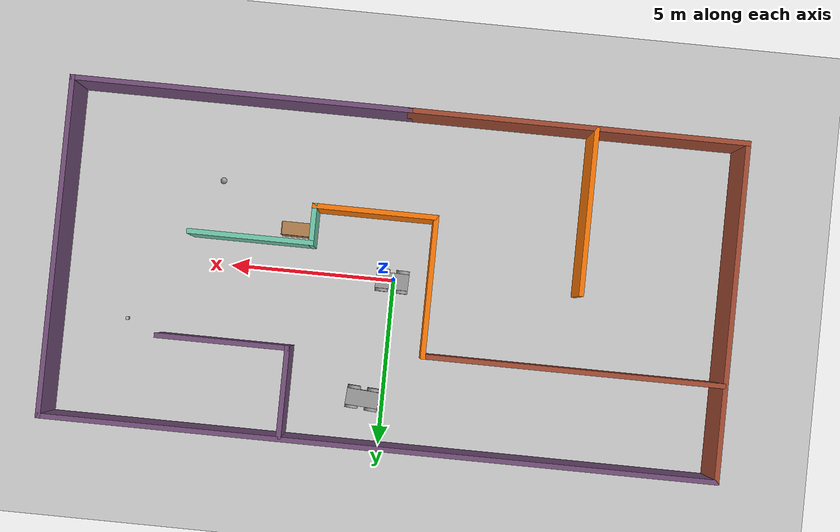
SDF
<sdf version="1.6">
 <world name="default">
  <plugin name="hello" filename="libhello.so"/>
  <light name="sun" type="directional">
   <pose>0 0 10 0 -0 0</pose>
   <diffuse>0.8 0.8 0.8 1</diffuse>
   <specular>0.2 0.2 0.2 1</specular>
   <attenuation>
    <range>1000</range>
    <constant>0.9</constant>
    <linear>0.01</linear>
    <quadratic>0.001</quadratic>
   </attenuation>
   <direction>-0.5 0.1 -0.9</direction>
  </light>
  <model name="ground_plane">
   <static>1</static>
   <link name="link">
    <collision name="collision">
     <geometry><plane><normal>0 0 1</normal><size>100 100</size></plane></geometry>
     <surface>
      <contact><collide_bitmask>65535</collide_bitmask></contact>
      <friction><ode><mu>100</mu><mu2>50</mu2></ode></friction>
     </surface>
    </collision>
    <visual name="visual">
     <cast_shadows>0</cast_shadows>
     <geometry><plane><normal>0 0 1</normal><size>100 100</size></plane></geometry>
     <material>
      <script><uri>file://media/materials/scripts/gazebo.material</uri><name>Gazebo/Grey</name></script>
     </material>
    </visual>
   </link>
  </model>
  <gravity>0 0 -9.8</gravity>
  <magnetic_field>6e-06 2.3e-05 -4.2e-05</magnetic_field>
  <atmosphere type="adiabatic"/>
  <physics name="default_physics" default="0" type="ode">
   <max_step_size>0.001</max_step_size>
   <real_time_factor>1</real_time_factor>
   <real_time_update_rate>1000</real_time_update_rate>
  </physics>
  <scene><ambient>0.4 0.4 0.4 1</ambient><background>0.7 0.7 0.7 1</background><shadows>1</shadows></scene>
  <audio><device>default</device></audio>
  <spherical_coordinates>
   <surface_model>EARTH_WGS84</surface_model>
   <latitude_deg>0</latitude_deg>
   <longitude_deg>0</longitude_deg>
   <elevation>0</elevation>
   <heading_deg>0</heading_deg>
  </spherical_coordinates>
  <model name="RoboModel">
   <link name="link_0">
    <inertial>
     <mass>1</mass>
     <inertia>
      <ixx>0.166667</ixx>
      <ixy>0</ixy>
      <ixz>0</ixz>
      <iyy>0.166667</iyy>
      <iyz>0</iyz>
      <izz>0.166667</izz>
     </inertia>
    </inertial>
    <pose>0 0.001523 -0.04 0 -0 0</pose>
    <visual name="visual">
     <geometry><box><size>1 0.5 0.3</size></box></geometry>
     <material>
      <lighting>1</lighting>
      <script><uri>file://media/materials/scripts/gazebo.material</uri><name>Gazebo/Grey</name></script>
      <shader type="vertex"><normal_map>__default__</normal_map></shader>
      <ambient>0.3 0.3 0.3 1</ambient>
      <diffuse>0.7 0.7 0.7 1</diffuse>
      <specular>0.01 0.01 0.01 1</specular>
      <emissive>0 0 0 1</emissive>
     </material>
    </visual>
    <collision name="collision">
     <geometry><box><size>1 0.5 0.3</size></box></geometry>
     <surface>
      <friction>
       <ode><mu>1</mu><mu2>1</mu2><fdir1>0 0 0</fdir1><slip1>0</slip1><slip2>0</slip2></ode>
       <torsional>
        <coefficient>1</coefficient>
        <patch_radius>0</patch_radius>
        <surface_radius>0</surface_radius>
        <use_patch_radius>1</use_patch_radius>
        <ode><slip>0</slip></ode>
       </torsional>
      </friction>
      <bounce><restitution_coefficient>0</restitution_coefficient><threshold>1e+06</threshold></bounce>
      <contact>
       <collide_without_contact>0</collide_without_contact>
       <collide_without_contact_bitmask>1</collide_without_contact_bitmask>
       <collide_bitmask>1</collide_bitmask>
       <ode>
        <soft_cfm>0</soft_cfm>
        <soft_erp>0.2</soft_erp>
        <kp>1e+13</kp>
        <kd>1</kd>
        <max_vel>0.01</max_vel>
        <min_depth>0</min_depth>
       </ode>
       <bullet>
        <split_impulse>1</split_impulse>
        <split_impulse_penetration_threshold>-0.01</split_impulse_penetration_threshold>
        <soft_cfm>0</soft_cfm>
        <soft_erp>0.2</soft_erp>
        <kp>1e+13</kp>
        <kd>1</kd>
       </bullet>
      </contact>
     </surface>
    </collision>
   </link>
   <link name="link_1_clone_0">
    <inertial>
     <mass>1</mass>
     <inertia><ixx>0.145833</ixx><ixy>0</ixy><ixz>0</ixz><iyy>0.145833</iyy><iyz>0</iyz><izz>0.125</izz></inertia>
    </inertial>
    <pose>0.3 -0.298496 -0.14 1.5707 -0 0</pose>
    <visual name="visual">
     <geometry><cylinder><radius>0.2</radius><length>0.1</length></cylinder></geometry>
     <material>
      <lighting>1</lighting>
      <script><uri>file://media/materials/scripts/gazebo.material</uri><name>Gazebo/Grey</name></script>
      <shader type="vertex"><normal_map>__default__</normal_map></shader>
      <ambient>0.3 0.3 0.3 1</ambient>
      <diffuse>0.7 0.7 0.7 1</diffuse>
      <specular>0.01 0.01 0.01 1</specular>
      <emissive>0 0 0 1</emissive>
     </material>
    </visual>
    <collision name="collision">
     <geometry><cylinder><radius>0.2</radius><length>0.1</length></cylinder></geometry>
     <surface>
      <friction>
       <ode><mu>1</mu><mu2>1</mu2><fdir1>0 0 0</fdir1><slip1>0</slip1><slip2>0</slip2></ode>
       <torsional>
        <coefficient>1</coefficient>
        <patch_radius>0</patch_radius>
        <surface_radius>0</surface_radius>
        <use_patch_radius>1</use_patch_radius>
        <ode><slip>0</slip></ode>
       </torsional>
      </friction>
      <bounce><restitution_coefficient>0</restitution_coefficient><threshold>1e+06</threshold></bounce>
      <contact>
       <collide_without_contact>0</collide_without_contact>
       <collide_without_contact_bitmask>1</collide_without_contact_bitmask>
       <collide_bitmask>1</collide_bitmask>
       <ode>
        <soft_cfm>0</soft_cfm>
        <soft_erp>0.2</soft_erp>
        <kp>1e+13</kp>
        <kd>1</kd>
        <max_vel>0.01</max_vel>
        <min_depth>0</min_depth>
       </ode>
       <bullet>
        <split_impulse>1</split_impulse>
        <split_impulse_penetration_threshold>-0.01</split_impulse_penetration_threshold>
        <soft_cfm>0</soft_cfm>
        <soft_erp>0.2</soft_erp>
        <kp>1e+13</kp>
        <kd>1</kd>
       </bullet>
      </contact>
     </surface>
    </collision>
   </link>
   <link name="link_1_clone_1">
    <inertial>
     <mass>1</mass>
     <inertia><ixx>0.145833</ixx><ixy>0</ixy><ixz>0</ixz><iyy>0.145833</iyy><iyz>0</iyz><izz>0.125</izz></inertia>
    </inertial>
    <pose>-0.3 -0.298496 -0.14 1.5707 -0 0</pose>
    <visual name="visual">
     <geometry><cylinder><radius>0.2</radius><length>0.1</length></cylinder></geometry>
     <material>
      <lighting>1</lighting>
      <script><uri>file://media/materials/scripts/gazebo.material</uri><name>Gazebo/Grey</name></script>
      <shader type="vertex"><normal_map>__default__</normal_map></shader>
      <ambient>0.3 0.3 0.3 1</ambient>
      <diffuse>0.7 0.7 0.7 1</diffuse>
      <specular>0.01 0.01 0.01 1</specular>
      <emissive>0 0 0 1</emissive>
     </material>
    </visual>
    <collision name="collision">
     <geometry><cylinder><radius>0.2</radius><length>0.1</length></cylinder></geometry>
     <surface>
      <friction>
       <ode><mu>1</mu><mu2>1</mu2><fdir1>0 0 0</fdir1><slip1>0</slip1><slip2>0</slip2></ode>
       <torsional>
        <coefficient>1</coefficient>
        <patch_radius>0</patch_radius>
        <surface_radius>0</surface_radius>
        <use_patch_radius>1</use_patch_radius>
        <ode><slip>0</slip></ode>
       </torsional>
      </friction>
      <bounce><restitution_coefficient>0</restitution_coefficient><threshold>1e+06</threshold></bounce>
      <contact>
       <collide_without_contact>0</collide_without_contact>
       <collide_without_contact_bitmask>1</collide_without_contact_bitmask>
       <collide_bitmask>1</collide_bitmask>
       <ode>
        <soft_cfm>0</soft_cfm>
        <soft_erp>0.2</soft_erp>
        <kp>1e+13</kp>
        <kd>1</kd>
        <max_vel>0.01</max_vel>
        <min_depth>0</min_depth>
       </ode>
       <bullet>
        <split_impulse>1</split_impulse>
        <split_impulse_penetration_threshold>-0.01</split_impulse_penetration_threshold>
        <soft_cfm>0</soft_cfm>
        <soft_erp>0.2</soft_erp>
        <kp>1e+13</kp>
        <kd>1</kd>
       </bullet>
      </contact>
     </surface>
    </collision>
   </link>
   <link name="link_1_clone_1_clone">
    <inertial>
     <mass>1</mass>
     <inertia><ixx>0.145833</ixx><ixy>0</ixy><ixz>0</ixz><iyy>0.145833</iyy><iyz>0</iyz><izz>0.125</izz></inertia>
    </inertial>
    <pose>0.3 0.293927 -0.14 1.5707 -0 0</pose>
    <visual name="visual">
     <geometry><cylinder><radius>0.2</radius><length>0.1</length></cylinder></geometry>
     <material>
      <lighting>1</lighting>
      <script><uri>file://media/materials/scripts/gazebo.material</uri><name>Gazebo/Grey</name></script>
      <shader type="vertex"><normal_map>__default__</normal_map></shader>
      <ambient>0.3 0.3 0.3 1</ambient>
      <diffuse>0.7 0.7 0.7 1</diffuse>
      <specular>0.01 0.01 0.01 1</specular>
      <emissive>0 0 0 1</emissive>
     </material>
    </visual>
    <collision name="collision">
     <geometry><cylinder><radius>0.2</radius><length>0.1</length></cylinder></geometry>
     <surface>
      <friction>
       <ode><mu>1</mu><mu2>1</mu2><fdir1>0 0 0</fdir1><slip1>0</slip1><slip2>0</slip2></ode>
       <torsional>
        <coefficient>1</coefficient>
        <patch_radius>0</patch_radius>
        <surface_radius>0</surface_radius>
        <use_patch_radius>1</use_patch_radius>
        <ode><slip>0</slip></ode>
       </torsional>
      </friction>
      <bounce><restitution_coefficient>0</restitution_coefficient><threshold>1e+06</threshold></bounce>
      <contact>
       <collide_without_contact>0</collide_without_contact>
       <collide_without_contact_bitmask>1</collide_without_contact_bitmask>
       <collide_bitmask>1</collide_bitmask>
       <ode>
        <soft_cfm>0</soft_cfm>
        <soft_erp>0.2</soft_erp>
        <kp>1e+13</kp>
        <kd>1</kd>
        <max_vel>0.01</max_vel>
        <min_depth>0</min_depth>
       </ode>
       <bullet>
        <split_impulse>1</split_impulse>
        <split_impulse_penetration_threshold>-0.01</split_impulse_penetration_threshold>
        <soft_cfm>0</soft_cfm>
        <soft_erp>0.2</soft_erp>
        <kp>1e+13</kp>
        <kd>1</kd>
       </bullet>
      </contact>
     </surface>
    </collision>
   </link>
   <link name="link_1_clone_1_clone_0">
    <inertial>
     <mass>1</mass>
     <inertia><ixx>0.145833</ixx><ixy>0</ixy><ixz>0</ixz><iyy>0.145833</iyy><iyz>0</iyz><izz>0.125</izz></inertia>
    </inertial>
    <pose>-0.3 0.301542 -0.14 1.5707 -0 0</pose>
    <visual name="visual">
     <geometry><cylinder><radius>0.2</radius><length>0.1</length></cylinder></geometry>
     <material>
      <lighting>1</lighting>
      <script><uri>file://media/materials/scripts/gazebo.material</uri><name>Gazebo/Grey</name></script>
      <shader type="vertex"><normal_map>__default__</normal_map></shader>
      <ambient>0.3 0.3 0.3 1</ambient>
      <diffuse>0.7 0.7 0.7 1</diffuse>
      <specular>0.01 0.01 0.01 1</specular>
      <emissive>0 0 0 1</emissive>
     </material>
    </visual>
    <collision name="collision">
     <geometry><cylinder><radius>0.2</radius><length>0.1</length></cylinder></geometry>
     <surface>
      <friction>
       <ode><mu>1</mu><mu2>1</mu2><fdir1>0 0 0</fdir1><slip1>0</slip1><slip2>0</slip2></ode>
       <torsional>
        <coefficient>1</coefficient>
        <patch_radius>0</patch_radius>
        <surface_radius>0</surface_radius>
        <use_patch_radius>1</use_patch_radius>
        <ode><slip>0</slip></ode>
       </torsional>
      </friction>
      <bounce><restitution_coefficient>0</restitution_coefficient><threshold>1e+06</threshold></bounce>
      <contact>
       <collide_without_contact>0</collide_without_contact>
       <collide_without_contact_bitmask>1</collide_without_contact_bitmask>
       <collide_bitmask>1</collide_bitmask>
       <ode>
        <soft_cfm>0</soft_cfm>
        <soft_erp>0.2</soft_erp>
        <kp>1e+13</kp>
        <kd>1</kd>
        <max_vel>0.01</max_vel>
        <min_depth>0</min_depth>
       </ode>
       <bullet>
        <split_impulse>1</split_impulse>
        <split_impulse_penetration_threshold>-0.01</split_impulse_penetration_threshold>
        <soft_cfm>0</soft_cfm>
        <soft_erp>0.2</soft_erp>
        <kp>1e+13</kp>
        <kd>1</kd>
       </bullet>
      </contact>
     </surface>
    </collision>
   </link>
   <joint name="link_0_JOINT_1" type="revolute">
    <parent>link_0</parent>
    <child>link_1_clone_0</child>
    <axis>
     <xyz>0 0 1</xyz>
     <use_parent_model_frame>0</use_parent_model_frame>
     <limit>
      <lower>-1.79769e+308</lower>
      <upper>1.79769e+308</upper>
      <effort>-1</effort>
      <velocity>-1</velocity>
     </limit>
     <dynamics>
      <spring_reference>0</spring_reference>
      <spring_stiffness>0</spring_stiffness>
      <damping>0</damping>
     </dynamics>
    </axis>
    <physics>
     <ode><limit><cfm>0</cfm><erp>0.2</erp></limit><suspension><cfm>0</cfm><erp>0.2</erp></suspension></ode>
    </physics>
   </joint>
   <joint name="link_0_JOINT_4" type="revolute">
    <parent>link_0</parent>
    <child>link_1_clone_1</child>
    <axis>
     <xyz>0 0 1</xyz>
     <use_parent_model_frame>0</use_parent_model_frame>
     <limit>
      <lower>-1.79769e+308</lower>
      <upper>1.79769e+308</upper>
      <effort>-1</effort>
      <velocity>-1</velocity>
     </limit>
     <dynamics>
      <spring_reference>0</spring_reference>
      <spring_stiffness>0</spring_stiffness>
      <damping>0</damping>
     </dynamics>
    </axis>
    <physics>
     <ode><limit><cfm>0</cfm><erp>0.2</erp></limit><suspension><cfm>0</cfm><erp>0.2</erp></suspension></ode>
    </physics>
   </joint>
   <joint name="link_0_JOINT_5" type="revolute">
    <parent>link_0</parent>
    <child>link_1_clone_1_clone</child>
    <axis>
     <xyz>0 0 1</xyz>
     <use_parent_model_frame>0</use_parent_model_frame>
     <limit>
      <lower>-1.79769e+308</lower>
      <upper>1.79769e+308</upper>
      <effort>-1</effort>
      <velocity>-1</velocity>
     </limit>
     <dynamics>
      <spring_reference>0</spring_reference>
      <spring_stiffness>0</spring_stiffness>
      <damping>0</damping>
     </dynamics>
    </axis>
    <physics>
     <ode><limit><cfm>0</cfm><erp>0.2</erp></limit><suspension><cfm>0</cfm><erp>0.2</erp></suspension></ode>
    </physics>
   </joint>
   <joint name="link_0_JOINT_6" type="revolute">
    <parent>link_0</parent>
    <child>link_1_clone_1_clone_0</child>
    <axis>
     <xyz>0 0 1</xyz>
     <use_parent_model_frame>0</use_parent_model_frame>
     <limit>
      <lower>-1.79769e+308</lower>
      <upper>1.79769e+308</upper>
      <effort>-1</effort>
      <velocity>-1</velocity>
     </limit>
     <dynamics>
      <spring_reference>0</spring_reference>
      <spring_stiffness>0</spring_stiffness>
      <damping>0</damping>
     </dynamics>
    </axis>
    <physics>
     <ode><limit><cfm>0</cfm><erp>0.2</erp></limit><suspension><cfm>0</cfm><erp>0.2</erp></suspension></ode>
    </physics>
   </joint>
   <static>0</static>
   <pose>0.046421 0.009606 0.340002 0 -1e-05 -0.024888</pose>
  </model>
  <model name="Environment">
   <link name="Wall_10">
    <collision name="Wall_10_Collision">
     <geometry><box><size>4.25 0.15 2.5</size></box></geometry>
     <pose>0 0 1.25 0 -0 0</pose>
    </collision>
    <visual name="Wall_10_Visual">
     <pose>0 0 1.25 0 -0 0</pose>
     <geometry><box><size>4.25 0.15 2.5</size></box></geometry>
     <material>
      <script><uri>file://media/materials/scripts/gazebo.material</uri><name>Gazebo/Grey</name></script>
      <ambient>0.996078 0.47451 0.0196078 1</ambient>
     </material>
     <meta><layer>0</layer></meta>
    </visual>
    <pose>-1.07623 0.124176 0 0 -0 -1.5708</pose>
   </link>
   <link name="Wall_11">
    <collision name="Wall_11_Collision">
     <geometry><box><size>3.75 0.15 2.5</size></box></geometry>
     <pose>0 0 1.25 0 -0 0</pose>
    </collision>
    <visual name="Wall_11_Visual">
     <pose>0 0 1.25 0 -0 0</pose>
     <geometry><box><size>3.75 0.15 2.5</size></box></geometry>
     <material>
      <script><uri>file://media/materials/scripts/gazebo.material</uri><name>Gazebo/Grey</name></script>
      <ambient>0.996078 0.47451 0.0196078 1</ambient>
     </material>
     <meta><layer>0</layer></meta>
    </visual>
    <pose>0.723769 -1.92582 0 0 -0 0</pose>
   </link>
   <link name="Wall_12">
    <collision name="Wall_12_Collision">
     <geometry><box><size>1.25 0.15 2.5</size></box></geometry>
     <pose>0 0 1.25 0 -0 0</pose>
    </collision>
    <visual name="Wall_12_Visual">
     <pose>0 0 1.25 0 -0 0</pose>
     <geometry><box><size>1.25 0.15 2.5</size></box></geometry>
     <material>
      <script><uri>file://media/materials/scripts/gazebo.material</uri><name>Gazebo/Grey</name></script>
      <ambient>0.435294 0.796078 0.67451 1</ambient>
     </material>
     <meta><layer>0</layer></meta>
    </visual>
    <pose>2.52377 -1.37582 0 0 -0 1.5708</pose>
   </link>
   <link name="Wall_13">
    <collision name="Wall_13_Collision">
     <geometry><box><size>3.75 0.15 2.5</size></box></geometry>
     <pose>0 0 1.25 0 -0 0</pose>
    </collision>
    <visual name="Wall_13_Visual">
     <pose>0 0 1.25 0 -0 0</pose>
     <geometry><box><size>3.75 0.15 2.5</size></box></geometry>
     <material>
      <script><uri>file://media/materials/scripts/gazebo.material</uri><name>Gazebo/Grey</name></script>
      <ambient>0.435294 0.796078 0.67451 1</ambient>
     </material>
     <meta><layer>0</layer></meta>
    </visual>
    <pose>4.32377 -0.825824 0 0 -0 0</pose>
   </link>
   <link name="Wall_15">
    <collision name="Wall_15_Collision">
     <geometry><box><size>2.75 0.15 2.5</size></box></geometry>
     <pose>0 0 1.25 0 -0 0</pose>
    </collision>
    <visual name="Wall_15_Visual">
     <pose>0 0 1.25 0 -0 0</pose>
     <geometry><box><size>2.75 0.15 2.5</size></box></geometry>
     <material>
      <script><uri>file://media/materials/scripts/gazebo.material</uri><name>Gazebo/Grey</name></script>
      <ambient>0.458824 0.313726 0.482353 1</ambient>
     </material>
     <meta><layer>0</layer></meta>
    </visual>
    <pose>2.91402 3.61812 0 0 -0 -1.5708</pose>
   </link>
   <link name="Wall_16">
    <collision name="Wall_16_Collision">
     <geometry><box><size>4 0.15 2.5</size></box></geometry>
     <pose>0 0 1.25 0 -0 0</pose>
    </collision>
    <visual name="Wall_16_Visual">
     <pose>0 0 1.25 0 -0 0</pose>
     <geometry><box><size>4 0.15 2.5</size></box></geometry>
     <material>
      <script><uri>file://media/materials/scripts/gazebo.material</uri><name>Gazebo/Grey</name></script>
      <ambient>0.458824 0.313726 0.482353 1</ambient>
     </material>
     <meta><layer>0</layer></meta>
    </visual>
    <pose>4.83902 2.31812 0 0 -0 0</pose>
   </link>
   <link name="Wall_18">
    <collision name="Wall_18_Collision">
     <geometry><box><size>5 0.15 2.5</size></box></geometry>
     <pose>0 0 1.25 0 -0 0</pose>
    </collision>
    <visual name="Wall_18_Visual">
     <pose>0 0 1.25 0 -0 0</pose>
     <geometry><box><size>5 0.15 2.5</size></box></geometry>
     <material>
      <script><uri>file://media/materials/scripts/gazebo.material</uri><name>Gazebo/Grey</name></script>
      <ambient>0.996078 0.47451 0.0196078 1</ambient>
     </material>
     <meta><layer>0</layer></meta>
    </visual>
    <pose>-5.52889 -2.53744 0 0 -0 -1.5708</pose>
   </link>
   <link name="Wall_2">
    <collision name="Wall_2_Collision">
     <geometry><box><size>10.1501 0.15 2.5</size></box></geometry>
     <pose>0 0 1.25 0 -0 0</pose>
    </collision>
    <visual name="Wall_2_Visual">
     <pose>0 0 1.25 0 -0 0</pose>
     <geometry><box><size>10.1501 0.15 2.5</size></box></geometry>
     <material>
      <script><uri>file://media/materials/scripts/gazebo.material</uri><name>Gazebo/Bricks</name></script>
      <ambient>1 1 1 1</ambient>
     </material>
     <meta><layer>0</layer></meta>
    </visual>
    <pose>-10 0 0 0 -0 -1.5708</pose>
   </link>
   <link name="Wall_3">
    <collision name="Wall_3_Collision">
     <geometry><box><size>10.15 0.15 2.5</size></box></geometry>
     <pose>0 0 1.25 0 -0 0</pose>
    </collision>
    <visual name="Wall_3_Visual">
     <pose>0 0 1.25 0 -0 0</pose>
     <geometry><box><size>10.15 0.15 2.5</size></box></geometry>
     <material>
      <script><uri>file://media/materials/scripts/gazebo.material</uri><name>Gazebo/Bricks</name></script>
      <ambient>1 1 1 1</ambient>
     </material>
     <meta><layer>0</layer></meta>
    </visual>
    <pose>-5 -5 0 0 -0 0</pose>
   </link>
   <link name="Wall_4">
    <collision name="Wall_4_Collision">
     <geometry><box><size>10.15 0.15 2.5</size></box></geometry>
     <pose>0 0 1.25 0 -0 0</pose>
    </collision>
    <visual name="Wall_4_Visual">
     <pose>0 0 1.25 0 -0 0</pose>
     <geometry><box><size>10.15 0.15 2.5</size></box></geometry>
     <material>
      <script><uri>file://media/materials/scripts/gazebo.material</uri><name>Gazebo/Grey</name></script>
      <ambient>0.458824 0.313726 0.482353 1</ambient>
     </material>
     <meta><layer>0</layer></meta>
    </visual>
    <pose>5 -5 0 0 -0 0</pose>
   </link>
   <link name="Wall_5">
    <collision name="Wall_5_Collision">
     <geometry><box><size>10.15 0.15 2.5</size></box></geometry>
     <pose>0 0 1.25 0 -0 0</pose>
    </collision>
    <visual name="Wall_5_Visual">
     <pose>0 0 1.25 0 -0 0</pose>
     <geometry><box><size>10.15 0.15 2.5</size></box></geometry>
     <material>
      <script><uri>file://media/materials/scripts/gazebo.material</uri><name>Gazebo/Grey</name></script>
      <ambient>0.458824 0.313726 0.482353 1</ambient>
     </material>
     <meta><layer>0</layer></meta>
    </visual>
    <pose>10 0 0 0 -0 1.5708</pose>
   </link>
   <link name="Wall_6">
    <collision name="Wall_6_Collision">
     <geometry><box><size>20.15 0.15 2.5</size></box></geometry>
     <pose>0 0 1.25 0 -0 0</pose>
    </collision>
    <visual name="Wall_6_Visual">
     <pose>0 0 1.25 0 -0 0</pose>
     <geometry><box><size>20.15 0.15 2.5</size></box></geometry>
     <material>
      <script><uri>file://media/materials/scripts/gazebo.material</uri><name>Gazebo/Grey</name></script>
      <ambient>0.458824 0.313726 0.482353 1</ambient>
     </material>
     <meta><layer>0</layer></meta>
    </visual>
    <pose>0 5 0 0 -0 3.14159</pose>
   </link>
   <link name="Wall_9">
    <collision name="Wall_9_Collision">
     <geometry><box><size>9 0.15 2.5</size></box></geometry>
     <pose>0 0 1.25 0 -0 0</pose>
    </collision>
    <visual name="Wall_9_Visual">
     <pose>0 0 1.25 0 -0 0</pose>
     <geometry><box><size>9 0.15 2.5</size></box></geometry>
     <material>
      <script><uri>file://media/materials/scripts/gazebo.material</uri><name>Gazebo/Bricks</name></script>
      <ambient>1 1 1 1</ambient>
     </material>
     <meta><layer>0</layer></meta>
    </visual>
    <pose>-5.50123 2.17418 0 0 -0 0</pose>
   </link>
   <static>1</static>
  </model>
  <model name="bookshelf">
   <static>1</static>
   <link name="link">
    <inertial><mass>1</mass></inertial>
    <collision name="back">
     <pose>0 0.005 0.6 0 -0 0</pose>
     <geometry><box><size>0.9 0.01 1.2</size></box></geometry>
    </collision>
    <visual name="visual1">
     <pose>0 0.005 0.6 0 -0 0</pose>
     <geometry><box><size>0.9 0.01 1.2</size></box></geometry>
     <material>
      <script><uri>file://media/materials/scripts/gazebo.material</uri><name>Gazebo/Wood</name></script>
     </material>
    </visual>
    <collision name="left_side">
     <pose>0.45 -0.195 0.6 0 -0 0</pose>
     <geometry><box><size>0.02 0.4 1.2</size></box></geometry>
    </collision>
    <visual name="visual2">
     <pose>0.45 -0.195 0.6 0 -0 0</pose>
     <geometry><box><size>0.02 0.4 1.2</size></box></geometry>
     <material>
      <script><uri>file://media/materials/scripts/gazebo.material</uri><name>Gazebo/Wood</name></script>
     </material>
    </visual>
    <collision name="right_side">
     <pose>-0.45 -0.195 0.6 0 -0 0</pose>
     <geometry><box><size>0.02 0.4 1.2</size></box></geometry>
    </collision>
    <visual name="visual3">
     <pose>-0.45 -0.195 0.6 0 -0 0</pose>
     <geometry><box><size>0.02 0.4 1.2</size></box></geometry>
     <material>
      <script><uri>file://media/materials/scripts/gazebo.material</uri><name>Gazebo/Wood</name></script>
     </material>
    </visual>
    <collision name="bottom">
     <pose>0 -0.195 0.03 0 -0 0</pose>
     <geometry><box><size>0.88 0.4 0.06</size></box></geometry>
    </collision>
    <visual name="visual4">
     <pose>0 -0.195 0.03 0 -0 0</pose>
     <geometry><box><size>0.88 0.4 0.06</size></box></geometry>
     <material>
      <script><uri>file://media/materials/scripts/gazebo.material</uri><name>Gazebo/Wood</name></script>
     </material>
    </visual>
    <collision name="top">
     <pose>0 -0.195 1.19 0 -0 0</pose>
     <geometry><box><size>0.88 0.4 0.02</size></box></geometry>
    </collision>
    <visual name="visual5">
     <pose>0 -0.195 1.19 0 -0 0</pose>
     <geometry><box><size>0.88 0.4 0.02</size></box></geometry>
     <material>
      <script><uri>file://media/materials/scripts/gazebo.material</uri><name>Gazebo/Wood</name></script>
     </material>
    </visual>
    <collision name="low_shelf">
     <pose>0 -0.195 0.43 0 -0 0</pose>
     <geometry><box><size>0.88 0.4 0.02</size></box></geometry>
    </collision>
    <visual name="visual6">
     <pose>0 -0.195 0.43 0 -0 0</pose>
     <geometry><box><size>0.88 0.4 0.02</size></box></geometry>
     <material>
      <script><uri>file://media/materials/scripts/gazebo.material</uri><name>Gazebo/Wood</name></script>
     </material>
    </visual>
    <collision name="high_shelf">
     <pose>0 -0.195 0.8 0 -0 0</pose>
     <geometry><box><size>0.88 0.4 0.02</size></box></geometry>
    </collision>
    <visual name="visual7">
     <pose>0 -0.195 0.8 0 -0 0</pose>
     <geometry><box><size>0.88 0.4 0.02</size></box></geometry>
     <material>
      <script><uri>file://media/materials/scripts/gazebo.material</uri><name>Gazebo/Wood</name></script>
     </material>
    </visual>
   </link>
   <pose>3.0546 -1.05334 0 0 -0 0</pose>
  </model>
  <model name="beer">
   <link name="link">
    <pose>0 0 0.115 0 -0 0</pose>
    <inertial>
     <mass>0.39</mass>
     <inertia><ixx>0.00058</ixx><ixy>0</ixy><ixz>0</ixz><iyy>0.00058</iyy><iyz>0</iyz><izz>0.00019</izz></inertia>
    </inertial>
    <collision name="collision">
     <geometry><cylinder><radius>0.055</radius><length>0.23</length></cylinder></geometry>
    </collision>
    <visual name="visual">
     <geometry><cylinder><radius>0.055</radius><length>0.23</length></cylinder></geometry>
     <material>
      <script>
       <uri>model://beer/materials/scripts</uri>
       <uri>model://beer/materials/textures</uri>
       <name>Beer/Diffuse</name>
      </script>
     </material>
    </visual>
   </link>
   <pose>7.98521 1.92121 -2e-06 1e-06 -0 -1.3e-05</pose>
  </model>
  <model name="RoboModel_0">
   <link name="link_0">
    <inertial>
     <mass>1</mass>
     <inertia>
      <ixx>0.166667</ixx>
      <ixy>0</ixy>
      <ixz>0</ixz>
      <iyy>0.166667</iyy>
      <iyz>0</iyz>
      <izz>0.166667</izz>
     </inertia>
    </inertial>
    <pose>0 0.001523 -0.04 0 -0 0</pose>
    <visual name="visual">
     <geometry><box><size>1 0.5 0.3</size></box></geometry>
     <material>
      <lighting>1</lighting>
      <script><uri>file://media/materials/scripts/gazebo.material</uri><name>Gazebo/Grey</name></script>
      <shader type="vertex"><normal_map>__default__</normal_map></shader>
      <ambient>0.3 0.3 0.3 1</ambient>
      <diffuse>0.7 0.7 0.7 1</diffuse>
      <specular>0.01 0.01 0.01 1</specular>
      <emissive>0 0 0 1</emissive>
     </material>
    </visual>
    <collision name="collision">
     <geometry><box><size>1 0.5 0.3</size></box></geometry>
     <surface>
      <friction>
       <ode><mu>1</mu><mu2>1</mu2><fdir1>0 0 0</fdir1><slip1>0</slip1><slip2>0</slip2></ode>
       <torsional>
        <coefficient>1</coefficient>
        <patch_radius>0</patch_radius>
        <surface_radius>0</surface_radius>
        <use_patch_radius>1</use_patch_radius>
        <ode><slip>0</slip></ode>
       </torsional>
      </friction>
      <bounce><restitution_coefficient>0</restitution_coefficient><threshold>1e+06</threshold></bounce>
      <contact>
       <collide_without_contact>0</collide_without_contact>
       <collide_without_contact_bitmask>1</collide_without_contact_bitmask>
       <collide_bitmask>1</collide_bitmask>
       <ode>
        <soft_cfm>0</soft_cfm>
        <soft_erp>0.2</soft_erp>
        <kp>1e+13</kp>
        <kd>1</kd>
        <max_vel>0.01</max_vel>
        <min_depth>0</min_depth>
       </ode>
       <bullet>
        <split_impulse>1</split_impulse>
        <split_impulse_penetration_threshold>-0.01</split_impulse_penetration_threshold>
        <soft_cfm>0</soft_cfm>
        <soft_erp>0.2</soft_erp>
        <kp>1e+13</kp>
        <kd>1</kd>
       </bullet>
      </contact>
     </surface>
    </collision>
   </link>
   <link name="link_1_clone_0">
    <inertial>
     <mass>1</mass>
     <inertia><ixx>0.145833</ixx><ixy>0</ixy><ixz>0</ixz><iyy>0.145833</iyy><iyz>0</iyz><izz>0.125</izz></inertia>
    </inertial>
    <pose>0.3 -0.298496 -0.14 1.5707 -0 0</pose>
    <visual name="visual">
     <geometry><cylinder><radius>0.2</radius><length>0.1</length></cylinder></geometry>
     <material>
      <lighting>1</lighting>
      <script><uri>file://media/materials/scripts/gazebo.material</uri><name>Gazebo/Grey</name></script>
      <shader type="vertex"><normal_map>__default__</normal_map></shader>
      <ambient>0.3 0.3 0.3 1</ambient>
      <diffuse>0.7 0.7 0.7 1</diffuse>
      <specular>0.01 0.01 0.01 1</specular>
      <emissive>0 0 0 1</emissive>
     </material>
    </visual>
    <collision name="collision">
     <geometry><cylinder><radius>0.2</radius><length>0.1</length></cylinder></geometry>
     <surface>
      <friction>
       <ode><mu>1</mu><mu2>1</mu2><fdir1>0 0 0</fdir1><slip1>0</slip1><slip2>0</slip2></ode>
       <torsional>
        <coefficient>1</coefficient>
        <patch_radius>0</patch_radius>
        <surface_radius>0</surface_radius>
        <use_patch_radius>1</use_patch_radius>
        <ode><slip>0</slip></ode>
       </torsional>
      </friction>
      <bounce><restitution_coefficient>0</restitution_coefficient><threshold>1e+06</threshold></bounce>
      <contact>
       <collide_without_contact>0</collide_without_contact>
       <collide_without_contact_bitmask>1</collide_without_contact_bitmask>
       <collide_bitmask>1</collide_bitmask>
       <ode>
        <soft_cfm>0</soft_cfm>
        <soft_erp>0.2</soft_erp>
        <kp>1e+13</kp>
        <kd>1</kd>
        <max_vel>0.01</max_vel>
        <min_depth>0</min_depth>
       </ode>
       <bullet>
        <split_impulse>1</split_impulse>
        <split_impulse_penetration_threshold>-0.01</split_impulse_penetration_threshold>
        <soft_cfm>0</soft_cfm>
        <soft_erp>0.2</soft_erp>
        <kp>1e+13</kp>
        <kd>1</kd>
       </bullet>
      </contact>
     </surface>
    </collision>
   </link>
   <link name="link_1_clone_1">
    <inertial>
     <mass>1</mass>
     <inertia><ixx>0.145833</ixx><ixy>0</ixy><ixz>0</ixz><iyy>0.145833</iyy><iyz>0</iyz><izz>0.125</izz></inertia>
    </inertial>
    <pose>-0.3 -0.298496 -0.14 1.5707 -0 0</pose>
    <visual name="visual">
     <geometry><cylinder><radius>0.2</radius><length>0.1</length></cylinder></geometry>
     <material>
      <lighting>1</lighting>
      <script><uri>file://media/materials/scripts/gazebo.material</uri><name>Gazebo/Grey</name></script>
      <shader type="vertex"><normal_map>__default__</normal_map></shader>
      <ambient>0.3 0.3 0.3 1</ambient>
      <diffuse>0.7 0.7 0.7 1</diffuse>
      <specular>0.01 0.01 0.01 1</specular>
      <emissive>0 0 0 1</emissive>
     </material>
    </visual>
    <collision name="collision">
     <geometry><cylinder><radius>0.2</radius><length>0.1</length></cylinder></geometry>
     <surface>
      <friction>
       <ode><mu>1</mu><mu2>1</mu2><fdir1>0 0 0</fdir1><slip1>0</slip1><slip2>0</slip2></ode>
       <torsional>
        <coefficient>1</coefficient>
        <patch_radius>0</patch_radius>
        <surface_radius>0</surface_radius>
        <use_patch_radius>1</use_patch_radius>
        <ode><slip>0</slip></ode>
       </torsional>
      </friction>
      <bounce><restitution_coefficient>0</restitution_coefficient><threshold>1e+06</threshold></bounce>
      <contact>
       <collide_without_contact>0</collide_without_contact>
       <collide_without_contact_bitmask>1</collide_without_contact_bitmask>
       <collide_bitmask>1</collide_bitmask>
       <ode>
        <soft_cfm>0</soft_cfm>
        <soft_erp>0.2</soft_erp>
        <kp>1e+13</kp>
        <kd>1</kd>
        <max_vel>0.01</max_vel>
        <min_depth>0</min_depth>
       </ode>
       <bullet>
        <split_impulse>1</split_impulse>
        <split_impulse_penetration_threshold>-0.01</split_impulse_penetration_threshold>
        <soft_cfm>0</soft_cfm>
        <soft_erp>0.2</soft_erp>
        <kp>1e+13</kp>
        <kd>1</kd>
       </bullet>
      </contact>
     </surface>
    </collision>
   </link>
   <link name="link_1_clone_1_clone">
    <inertial>
     <mass>1</mass>
     <inertia><ixx>0.145833</ixx><ixy>0</ixy><ixz>0</ixz><iyy>0.145833</iyy><iyz>0</iyz><izz>0.125</izz></inertia>
    </inertial>
    <pose>0.3 0.293927 -0.14 1.5707 -0 0</pose>
    <visual name="visual">
     <geometry><cylinder><radius>0.2</radius><length>0.1</length></cylinder></geometry>
     <material>
      <lighting>1</lighting>
      <script><uri>file://media/materials/scripts/gazebo.material</uri><name>Gazebo/Grey</name></script>
      <shader type="vertex"><normal_map>__default__</normal_map></shader>
      <ambient>0.3 0.3 0.3 1</ambient>
      <diffuse>0.7 0.7 0.7 1</diffuse>
      <specular>0.01 0.01 0.01 1</specular>
      <emissive>0 0 0 1</emissive>
     </material>
    </visual>
    <collision name="collision">
     <geometry><cylinder><radius>0.2</radius><length>0.1</length></cylinder></geometry>
     <surface>
      <friction>
       <ode><mu>1</mu><mu2>1</mu2><fdir1>0 0 0</fdir1><slip1>0</slip1><slip2>0</slip2></ode>
       <torsional>
        <coefficient>1</coefficient>
        <patch_radius>0</patch_radius>
        <surface_radius>0</surface_radius>
        <use_patch_radius>1</use_patch_radius>
        <ode><slip>0</slip></ode>
       </torsional>
      </friction>
      <bounce><restitution_coefficient>0</restitution_coefficient><threshold>1e+06</threshold></bounce>
      <contact>
       <collide_without_contact>0</collide_without_contact>
       <collide_without_contact_bitmask>1</collide_without_contact_bitmask>
       <collide_bitmask>1</collide_bitmask>
       <ode>
        <soft_cfm>0</soft_cfm>
        <soft_erp>0.2</soft_erp>
        <kp>1e+13</kp>
        <kd>1</kd>
        <max_vel>0.01</max_vel>
        <min_depth>0</min_depth>
       </ode>
       <bullet>
        <split_impulse>1</split_impulse>
        <split_impulse_penetration_threshold>-0.01</split_impulse_penetration_threshold>
        <soft_cfm>0</soft_cfm>
        <soft_erp>0.2</soft_erp>
        <kp>1e+13</kp>
        <kd>1</kd>
       </bullet>
      </contact>
     </surface>
    </collision>
   </link>
   <link name="link_1_clone_1_clone_0">
    <inertial>
     <mass>1</mass>
     <inertia><ixx>0.145833</ixx><ixy>0</ixy><ixz>0</ixz><iyy>0.145833</iyy><iyz>0</iyz><izz>0.125</izz></inertia>
    </inertial>
    <pose>-0.3 0.301542 -0.14 1.5707 -0 0</pose>
    <visual name="visual">
     <geometry><cylinder><radius>0.2</radius><length>0.1</length></cylinder></geometry>
     <material>
      <lighting>1</lighting>
      <script><uri>file://media/materials/scripts/gazebo.material</uri><name>Gazebo/Grey</name></script>
      <shader type="vertex"><normal_map>__default__</normal_map></shader>
      <ambient>0.3 0.3 0.3 1</ambient>
      <diffuse>0.7 0.7 0.7 1</diffuse>
      <specular>0.01 0.01 0.01 1</specular>
      <emissive>0 0 0 1</emissive>
     </material>
    </visual>
    <collision name="collision">
     <geometry><cylinder><radius>0.2</radius><length>0.1</length></cylinder></geometry>
     <surface>
      <friction>
       <ode><mu>1</mu><mu2>1</mu2><fdir1>0 0 0</fdir1><slip1>0</slip1><slip2>0</slip2></ode>
       <torsional>
        <coefficient>1</coefficient>
        <patch_radius>0</patch_radius>
        <surface_radius>0</surface_radius>
        <use_patch_radius>1</use_patch_radius>
        <ode><slip>0</slip></ode>
       </torsional>
      </friction>
      <bounce><restitution_coefficient>0</restitution_coefficient><threshold>1e+06</threshold></bounce>
      <contact>
       <collide_without_contact>0</collide_without_contact>
       <collide_without_contact_bitmask>1</collide_without_contact_bitmask>
       <collide_bitmask>1</collide_bitmask>
       <ode>
        <soft_cfm>0</soft_cfm>
        <soft_erp>0.2</soft_erp>
        <kp>1e+13</kp>
        <kd>1</kd>
        <max_vel>0.01</max_vel>
        <min_depth>0</min_depth>
       </ode>
       <bullet>
        <split_impulse>1</split_impulse>
        <split_impulse_penetration_threshold>-0.01</split_impulse_penetration_threshold>
        <soft_cfm>0</soft_cfm>
        <soft_erp>0.2</soft_erp>
        <kp>1e+13</kp>
        <kd>1</kd>
       </bullet>
      </contact>
     </surface>
    </collision>
   </link>
   <joint name="link_0_JOINT_1" type="revolute">
    <parent>link_0</parent>
    <child>link_1_clone_0</child>
    <axis>
     <xyz>0 0 1</xyz>
     <use_parent_model_frame>0</use_parent_model_frame>
     <limit>
      <lower>-1.79769e+308</lower>
      <upper>1.79769e+308</upper>
      <effort>-1</effort>
      <velocity>-1</velocity>
     </limit>
     <dynamics>
      <spring_reference>0</spring_reference>
      <spring_stiffness>0</spring_stiffness>
      <damping>0</damping>
     </dynamics>
    </axis>
    <physics>
     <ode><limit><cfm>0</cfm><erp>0.2</erp></limit><suspension><cfm>0</cfm><erp>0.2</erp></suspension></ode>
    </physics>
   </joint>
   <joint name="link_0_JOINT_4" type="revolute">
    <parent>link_0</parent>
    <child>link_1_clone_1</child>
    <axis>
     <xyz>0 0 1</xyz>
     <use_parent_model_frame>0</use_parent_model_frame>
     <limit>
      <lower>-1.79769e+308</lower>
      <upper>1.79769e+308</upper>
      <effort>-1</effort>
      <velocity>-1</velocity>
     </limit>
     <dynamics>
      <spring_reference>0</spring_reference>
      <spring_stiffness>0</spring_stiffness>
      <damping>0</damping>
     </dynamics>
    </axis>
    <physics>
     <ode><limit><cfm>0</cfm><erp>0.2</erp></limit><suspension><cfm>0</cfm><erp>0.2</erp></suspension></ode>
    </physics>
   </joint>
   <joint name="link_0_JOINT_5" type="revolute">
    <parent>link_0</parent>
    <child>link_1_clone_1_clone</child>
    <axis>
     <xyz>0 0 1</xyz>
     <use_parent_model_frame>0</use_parent_model_frame>
     <limit>
      <lower>-1.79769e+308</lower>
      <upper>1.79769e+308</upper>
      <effort>-1</effort>
      <velocity>-1</velocity>
     </limit>
     <dynamics>
      <spring_reference>0</spring_reference>
      <spring_stiffness>0</spring_stiffness>
      <damping>0</damping>
     </dynamics>
    </axis>
    <physics>
     <ode><limit><cfm>0</cfm><erp>0.2</erp></limit><suspension><cfm>0</cfm><erp>0.2</erp></suspension></ode>
    </physics>
   </joint>
   <joint name="link_0_JOINT_6" type="revolute">
    <parent>link_0</parent>
    <child>link_1_clone_1_clone_0</child>
    <axis>
     <xyz>0 0 1</xyz>
     <use_parent_model_frame>0</use_parent_model_frame>
     <limit>
      <lower>-1.79769e+308</lower>
      <upper>1.79769e+308</upper>
      <effort>-1</effort>
      <velocity>-1</velocity>
     </limit>
     <dynamics>
      <spring_reference>0</spring_reference>
      <spring_stiffness>0</spring_stiffness>
      <damping>0</damping>
     </dynamics>
    </axis>
    <physics>
     <ode><limit><cfm>0</cfm><erp>0.2</erp></limit><suspension><cfm>0</cfm><erp>0.2</erp></suspension></ode>
    </physics>
   </joint>
   <static>0</static>
   <pose>0.600398 3.64785 0.340004 -1e-06 -0 -0.0683</pose>
  </model>
  <model name="my_ball">
   <link name="link">
    <inertial>
     <mass>1</mass>
     <inertia><ixx>0.1</ixx><ixy>0</ixy><ixz>0</ixz><iyy>0.1</iyy><iyz>0</iyz><izz>0.1</izz></inertia>
    </inertial>
    <visual name="visual">
     <geometry><sphere><radius>0.1</radius></sphere></geometry>
     <material>
      <script><name>Gazebo/Grey</name><uri>file://media/materials/scripts/gazebo.material</uri></script>
      <shader type="vertex"><normal_map>__default__</normal_map></shader>
      <ambient>1 1 1 1</ambient>
      <diffuse>1 1 1 1</diffuse>
      <specular>1 1 1 1</specular>
      <emissive>1 1 1 1</emissive>
     </material>
    </visual>
    <collision name="collision">
     <geometry><sphere><radius>0.1</radius></sphere></geometry>
     <surface>
      <friction>
       <ode><mu>1</mu><mu2>1</mu2><fdir1>0 0 0</fdir1><slip1>0</slip1><slip2>0</slip2></ode>
       <torsional>
        <coefficient>1</coefficient>
        <patch_radius>0</patch_radius>
        <surface_radius>0</surface_radius>
        <use_patch_radius>1</use_patch_radius>
        <ode><slip>0</slip></ode>
       </torsional>
      </friction>
      <bounce><restitution_coefficient>0</restitution_coefficient><threshold>1e+06</threshold></bounce>
      <contact>
       <collide_without_contact>0</collide_without_contact>
       <collide_without_contact_bitmask>1</collide_without_contact_bitmask>
       <collide_bitmask>1</collide_bitmask>
       <ode>
        <soft_cfm>0</soft_cfm>
        <soft_erp>0.2</soft_erp>
        <kp>1e+13</kp>
        <kd>1</kd>
        <max_vel>0.01</max_vel>
        <min_depth>0</min_depth>
       </ode>
       <bullet>
        <split_impulse>1</split_impulse>
        <split_impulse_penetration_threshold>-0.01</split_impulse_penetration_threshold>
        <soft_cfm>0</soft_cfm>
        <soft_erp>0.2</soft_erp>
        <kp>1e+13</kp>
        <kd>1</kd>
       </bullet>
      </contact>
     </surface>
    </collision>
   </link>
   <static>0</static>
   <pose>5.48181 -2.55305 0.1 0 -0 0</pose>
  </model>
 </world>
</sdf>
